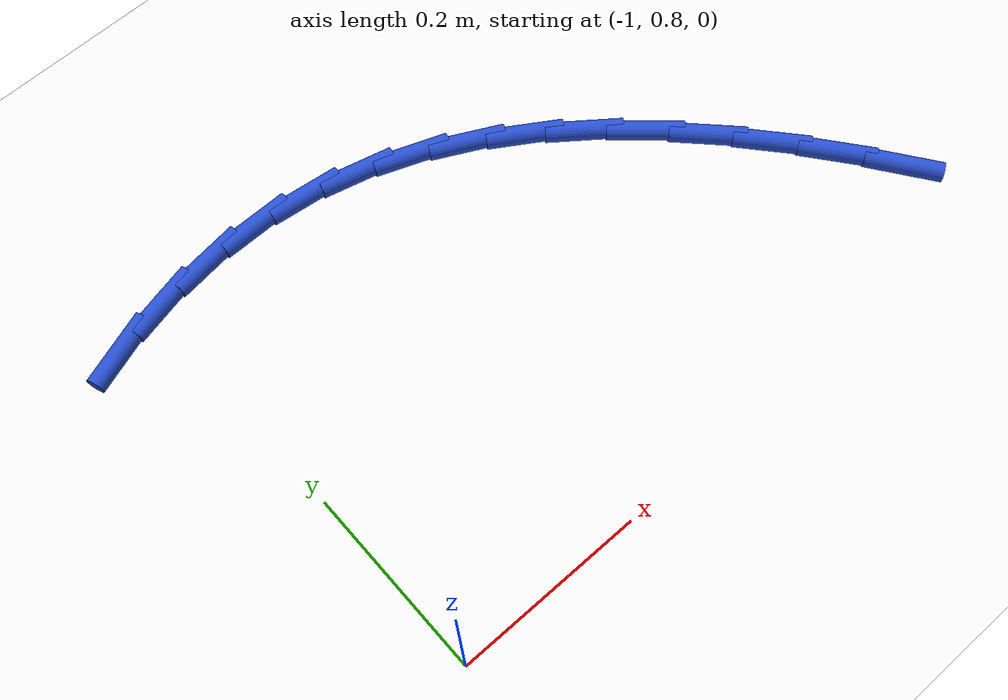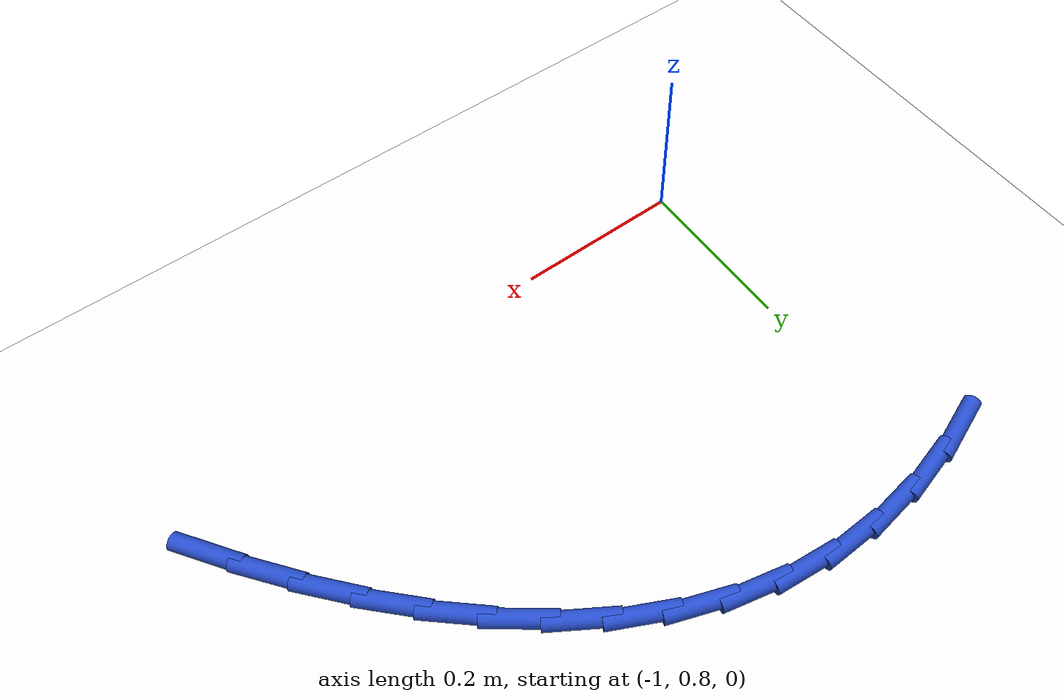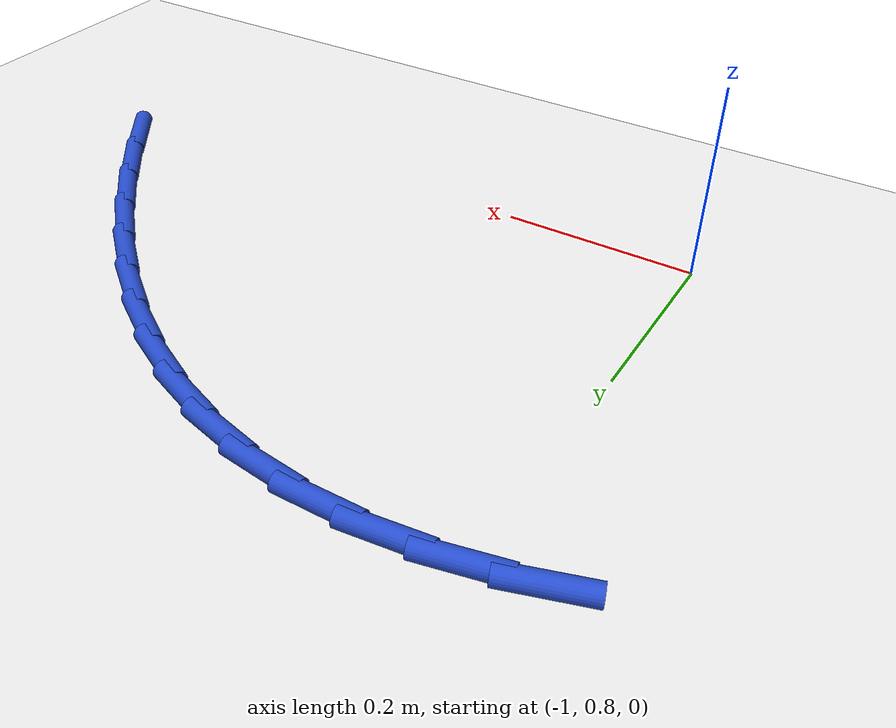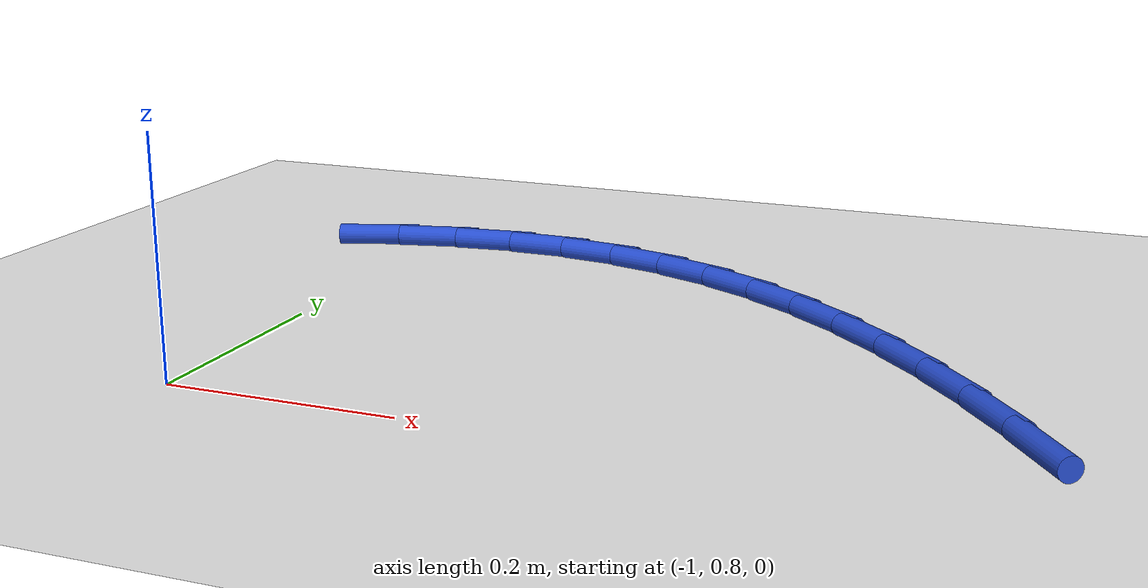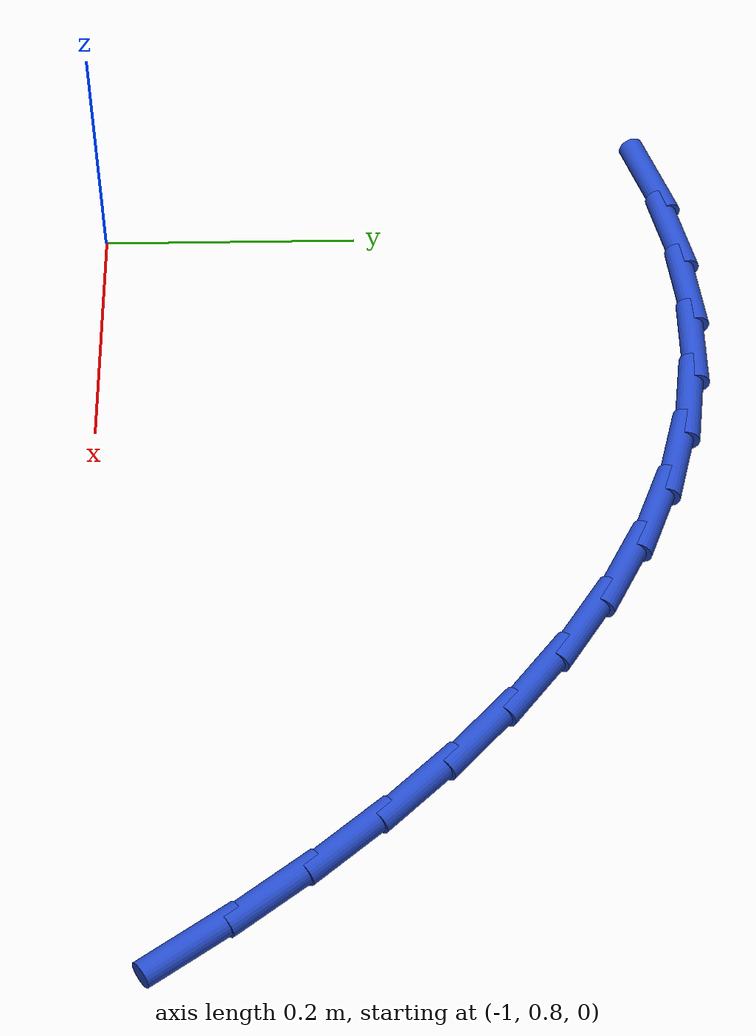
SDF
<sdf version="1.6">
 <world name="default">
  <model name="ground_plane">
   <static>1</static>
   <link name="link">
    <collision name="collision">
     <geometry><plane><normal>0 0 1</normal><size>100 100</size></plane></geometry>
     <surface><friction><ode><mu>100</mu><mu2>50</mu2></ode></friction></surface>
    </collision>
    <visual name="visual">
     <cast_shadows>0</cast_shadows>
     <geometry><plane><normal>0 0 1</normal><size>100 100</size></plane></geometry>
     <material>
      <script><uri>file://media/materials/scripts/gazebo.material</uri><name>Gazebo/WhiteGlow</name></script>
     </material>
    </visual>
   </link>
  </model>
  <model name="line">
   <link name="link_15">
    <pose>-0.34487812458023304 0.8862443107682204 0.01 0 1.57 -0.9497555923571266</pose>
    <collision name="collision">
     <geometry><cylinder><radius>0.01</radius><length>0.08</length></cylinder></geometry>
    </collision>
    <visual name="visual">
     <material>
      <script><name>Gazebo/Blue</name><uri>file://media/materials/scripts/gazebo.material</uri></script>
     </material>
     <geometry><cylinder><radius>0.01</radius><length>0.08</length></cylinder></geometry>
    </visual>
   </link>
   <link name="link_16">
    <pose>-0.3840250828388949 0.9409584678518373 0.01 0 1.57 -0.9045695316228177</pose>
    <collision name="collision">
     <geometry><cylinder><radius>0.01</radius><length>0.08</length></cylinder></geometry>
    </collision>
    <visual name="visual">
     <material>
      <script><name>Gazebo/Blue</name><uri>file://media/materials/scripts/gazebo.material</uri></script>
     </material>
     <geometry><cylinder><radius>0.01</radius><length>0.08</length></cylinder></geometry>
    </visual>
   </link>
   <link name="link_17">
    <pose>-0.42496147219723657 0.9930317138953362 0.01 0 1.57 -0.8531681723473682</pose>
    <collision name="collision">
     <geometry><cylinder><radius>0.01</radius><length>0.08</length></cylinder></geometry>
    </collision>
    <visual name="visual">
     <material>
      <script><name>Gazebo/Blue</name><uri>file://media/materials/scripts/gazebo.material</uri></script>
     </material>
     <geometry><cylinder><radius>0.01</radius><length>0.08</length></cylinder></geometry>
    </visual>
   </link>
   <link name="link_18">
    <pose>-0.4676935967233252 1.0419870270448726 0.01 0 1.57 -0.7945886163689804</pose>
    <collision name="collision">
     <geometry><cylinder><radius>0.01</radius><length>0.08</length></cylinder></geometry>
    </collision>
    <visual name="visual">
     <material>
      <script><name>Gazebo/Blue</name><uri>file://media/materials/scripts/gazebo.material</uri></script>
     </material>
     <geometry><cylinder><radius>0.01</radius><length>0.08</length></cylinder></geometry>
    </visual>
   </link>
   <link name="link_19">
    <pose>-0.5122277604852277 1.0873473854466011 0.01 0 1.57 -0.7277868298214545</pose>
    <collision name="collision">
     <geometry><cylinder><radius>0.01</radius><length>0.08</length></cylinder></geometry>
    </collision>
    <visual name="visual">
     <material>
      <script><name>Gazebo/Blue</name><uri>file://media/materials/scripts/gazebo.material</uri></script>
     </material>
     <geometry><cylinder><radius>0.01</radius><length>0.08</length></cylinder></geometry>
    </visual>
   </link>
   <link name="link_20">
    <pose>-0.5585702675510112 1.128635767246677 0.01 0 1.57 -0.6517099275369024</pose>
    <collision name="collision">
     <geometry><cylinder><radius>0.01</radius><length>0.08</length></cylinder></geometry>
    </collision>
    <visual name="visual">
     <material>
      <script><name>Gazebo/Blue</name><uri>file://media/materials/scripts/gazebo.material</uri></script>
     </material>
     <geometry><cylinder><radius>0.01</radius><length>0.08</length></cylinder></geometry>
    </visual>
   </link>
   <link name="link_21">
    <pose>-0.6067274219887426 1.165375150591255 0.01 0 1.57 -0.5654337932383046</pose>
    <collision name="collision">
     <geometry><cylinder><radius>0.01</radius><length>0.08</length></cylinder></geometry>
    </collision>
    <visual name="visual">
     <material>
      <script><name>Gazebo/Blue</name><uri>file://media/materials/scripts/gazebo.material</uri></script>
     </material>
     <geometry><cylinder><radius>0.01</radius><length>0.08</length></cylinder></geometry>
    </visual>
   </link>
   <link name="link_22">
    <pose>-0.6567055278664894 1.1970885136264913 0.01 0 1.57 -0.46838702361473855</pose>
    <collision name="collision">
     <geometry><cylinder><radius>0.01</radius><length>0.08</length></cylinder></geometry>
    </collision>
    <visual name="visual">
     <material>
      <script><name>Gazebo/Blue</name><uri>file://media/materials/scripts/gazebo.material</uri></script>
     </material>
     <geometry><cylinder><radius>0.01</radius><length>0.08</length></cylinder></geometry>
    </visual>
   </link>
   <link name="link_23">
    <pose>-0.7085108892523182 1.2232988344985394 0.01 0 1.57 -0.3606597817733802</pose>
    <collision name="collision">
     <geometry><cylinder><radius>0.01</radius><length>0.08</length></cylinder></geometry>
    </collision>
    <visual name="visual">
     <material>
      <script><name>Gazebo/Blue</name><uri>file://media/materials/scripts/gazebo.material</uri></script>
     </material>
     <geometry><cylinder><radius>0.01</radius><length>0.08</length></cylinder></geometry>
    </visual>
   </link>
   <link name="link_24">
    <pose>-0.7621498102142968 1.2435290913535562 0.01 0 1.57 -0.2433404812194778</pose>
    <collision name="collision">
     <geometry><cylinder><radius>0.01</radius><length>0.08</length></cylinder></geometry>
    </collision>
    <visual name="visual">
     <material>
      <script><name>Gazebo/Blue</name><uri>file://media/materials/scripts/gazebo.material</uri></script>
     </material>
     <geometry><cylinder><radius>0.01</radius><length>0.08</length></cylinder></geometry>
    </visual>
   </link>
   <link name="link_25">
    <pose>-0.817628594820491 1.2573022623376944 0.01 0 1.57 -0.11874218471520998</pose>
    <collision name="collision">
     <geometry><cylinder><radius>0.01</radius><length>0.08</length></cylinder></geometry>
    </collision>
    <visual name="visual">
     <material>
      <script><name>Gazebo/Blue</name><uri>file://media/materials/scripts/gazebo.material</uri></script>
     </material>
     <geometry><cylinder><radius>0.01</radius><length>0.08</length></cylinder></geometry>
    </visual>
   </link>
   <link name="link_26">
    <pose>-0.8749535471389693 1.2641413255971117 0.01 0 1.57 0.007675183467705361</pose>
    <collision name="collision">
     <geometry><cylinder><radius>0.01</radius><length>0.08</length></cylinder></geometry>
    </collision>
    <visual name="visual">
     <material>
      <script><name>Gazebo/Blue</name><uri>file://media/materials/scripts/gazebo.material</uri></script>
     </material>
     <geometry><cylinder><radius>0.01</radius><length>0.08</length></cylinder></geometry>
    </visual>
   </link>
   <link name="link_27">
    <pose>-0.9340074756975185 1.2636880669606478 0.01 0 1.57 0.12454465339050488</pose>
    <collision name="collision">
     <geometry><cylinder><radius>0.01</radius><length>0.08</length></cylinder></geometry>
    </collision>
    <visual name="visual">
     <material>
      <script><name>Gazebo/Blue</name><uri>file://media/materials/scripts/gazebo.material</uri></script>
     </material>
     <geometry><cylinder><radius>0.01</radius><length>0.08</length></cylinder></geometry>
    </visual>
   </link>
   <link name="link_28">
    <pose>-0.9940650798910535 1.256169297730413 0.01 0 1.57 0.23148396575456792</pose>
    <collision name="collision">
     <geometry><cylinder><radius>0.01</radius><length>0.08</length></cylinder></geometry>
    </collision>
    <visual name="visual">
     <material>
      <script><name>Gazebo/Blue</name><uri>file://media/materials/scripts/gazebo.material</uri></script>
     </material>
     <geometry><cylinder><radius>0.01</radius><length>0.08</length></cylinder></geometry>
    </visual>
   </link>
   <link name="link_29">
    <pose>-1.0542142002671004 1.2419915949441604 0.01 0 1.57 0.3316365952005448</pose>
    <collision name="collision">
     <geometry><cylinder><radius>0.01</radius><length>0.08</length></cylinder></geometry>
    </collision>
    <visual name="visual">
     <material>
      <script><name>Gazebo/Blue</name><uri>file://media/materials/scripts/gazebo.material</uri></script>
     </material>
     <geometry><cylinder><radius>0.01</radius><length>0.08</length></cylinder></geometry>
    </visual>
   </link>
  </model>
 </world>
</sdf>
